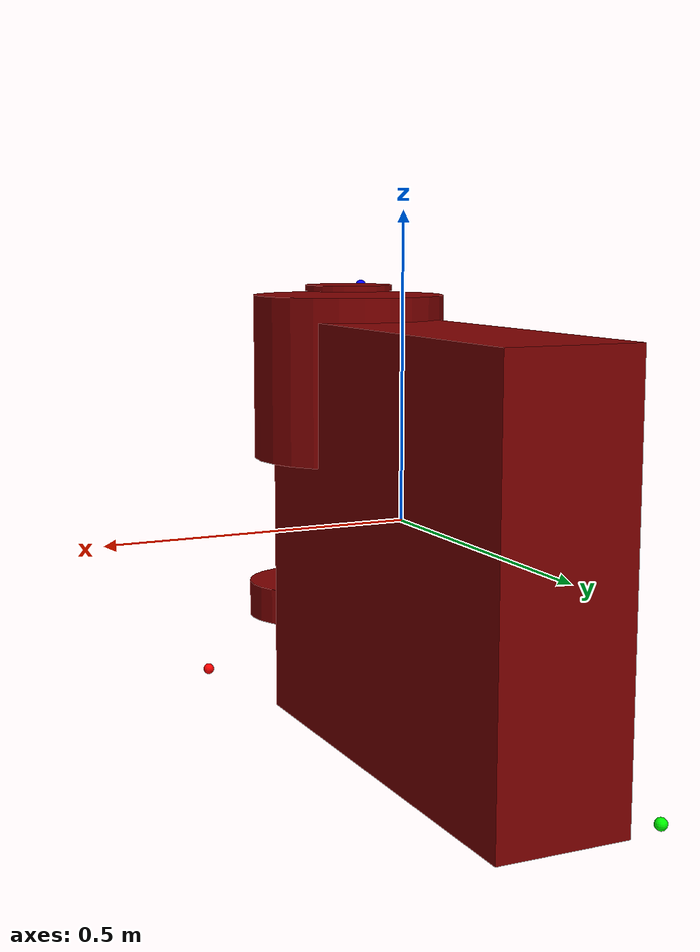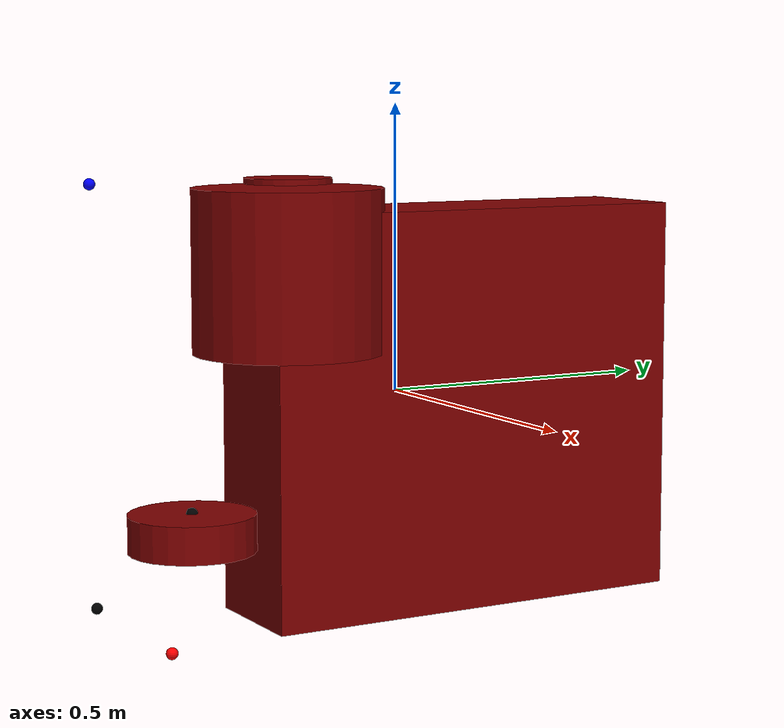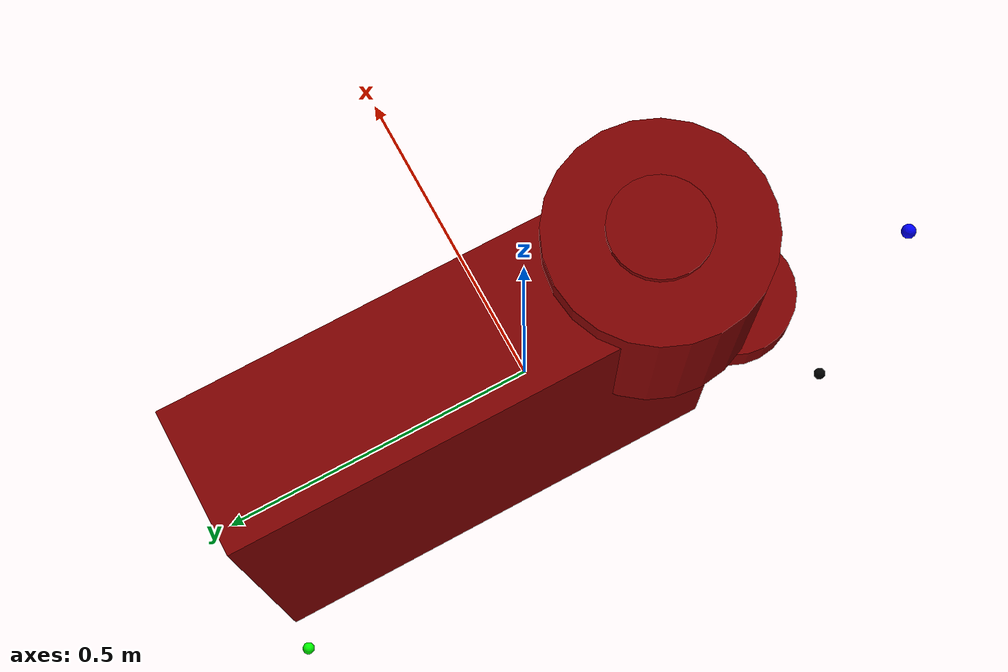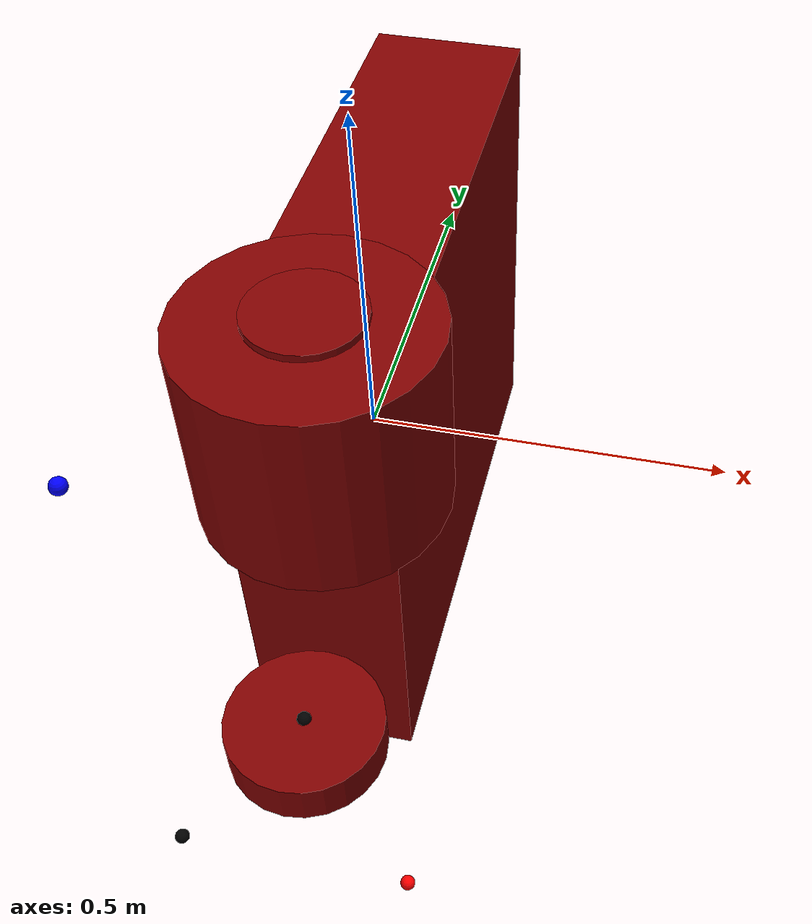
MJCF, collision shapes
<mujoco model="model">
  <compiler angle="radian" />
  <asset>
    <texture file="visuals/image0.png" name="tex-model" type="2d" />
    <texture type="2d" name="image0" file="visuals/image0.png" />
    <material name="model" reflectance="0.5" texrepeat="1 1" texture="tex-model" texuniform="false" />
    <material name="Black_Plastic" texture="image0" specular="0.5" shininess="0.25" />
    <material name="Chrome" specular="0.5" shininess="1.0" rgba="1.000000 1.000000 1.000000 1.0" />
    <material name="Perspex" specular="0.5" shininess="1.0" rgba="0.154820 0.154820 0.154820 1.0" />
    <material name="Water" specular="0.5" shininess="1.0" rgba="1.000000 1.000000 1.000000 1.0" />
    <material name="White_Plastic" specular="0.5" shininess="0.049155468"
      rgba="0.800000 0.686012 0.559470 1.0" />
    <mesh file="visuals/model_0.obj" name="model_0_vis" scale="1 1 1" />
    <mesh file="visuals/model_1.obj" name="model_1_vis" scale="1 1 1" />
    <mesh file="visuals/model_2.obj" name="model_2_vis" scale="1 1 1" />
    <mesh file="visuals/model_3.obj" name="model_3_vis" scale="1 1 1" />
    <mesh file="visuals/model_4.obj" name="model_4_vis" scale="1 1 1" />
  </asset>
  <default>
    <default class="visual">
      <geom conaffinity="0" contype="0" group="1" type="mesh" />
    </default>
    <default class="collision">
      <geom group="0" rgba="0.5 0 0 0.5" />
    </default>
  </default>
  <worldbody>
    <body>
      <!-- exterior bounding box points -->
      <site rgba="0 0 0 1" size="0.01" pos="-0.1617055719654759 -0.5 -0.3655727440685032"
        name="ext_p0" />
      <site rgba="1 0 0 1" size="0.01" pos="0.1617055719654759 -0.5 -0.3655727440685032"
        name="ext_px" />
      <site rgba="0 1 0 1" size="0.01" pos="-0.1617055719654759 0.5 -0.3655727440685032"
        name="ext_py" />
      <site rgba="0 0 1 1" size="0.01" pos="-0.1617055719654759 -0.5 0.3655727440685032"
        name="ext_pz" />
      <!-- interior bounding box points -->
      <body name="object">
        <geom solimp="0.998 0.998 0.001" solref="0.001 1" density="100" friction="0.95 0.3 0.1"
          type="mesh" mesh="model_0_vis" material="Water" class="visual" />
        <geom solimp="0.998 0.998 0.001" solref="0.001 1" density="100" friction="0.95 0.3 0.1"
          type="mesh" mesh="model_1_vis" material="Perspex" class="visual" />
        <geom solimp="0.998 0.998 0.001" solref="0.001 1" density="100" friction="0.95 0.3 0.1"
          type="mesh" mesh="model_2_vis" material="Chrome" class="visual" />
        <geom solimp="0.998 0.998 0.001" solref="0.001 1" density="100" friction="0.95 0.3 0.1"
          type="mesh" mesh="model_3_vis" material="Black_Plastic" class="visual" />
        <geom solimp="0.998 0.998 0.001" solref="0.001 1" density="100" friction="0.95 0.3 0.1"
          type="mesh" mesh="model_4_vis" material="White_Plastic" class="visual" />
        <geom class="collision" type="box" pos="0 0.11 -0.03" size="0.11 0.39 0.35" />
        <geom class="collision" type="cylinder" pos="0 -0.209 0.22" size="0.164 0.14" />
        <!-- Cup Stand -->
        <geom class="collision" type="cylinder" pos="0 -0.391 -0.212" size="0.109 0.032" />
        <!-- Button -->
        <geom class="collision" type="cylinder" pos="0 -0.208 0.372" size="0.075 0.005"
          name="start_button" />
        <site rgba="0 0 0 1" size="0.01" pos="0 -0.391 -0.18" name="receptacle_place_site" />
        <site rgba="0.8 0.5 0.25 0" size="0.006 0.15" pos="0.0 -0.35 -0.05" type="cylinder"
          name="coffee_liquid" />
      </body>
    </body>
  </worldbody>
</mujoco>
